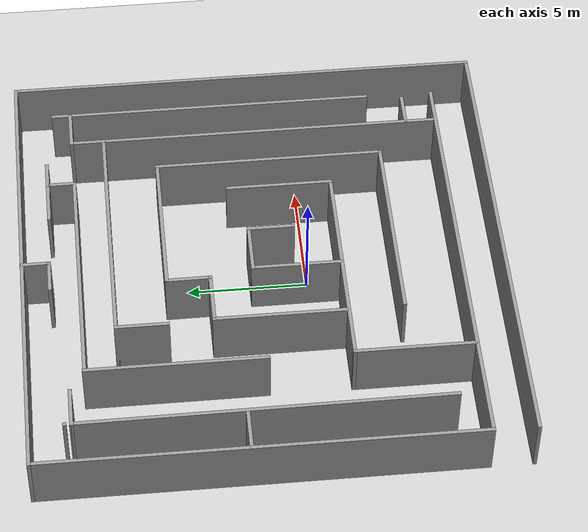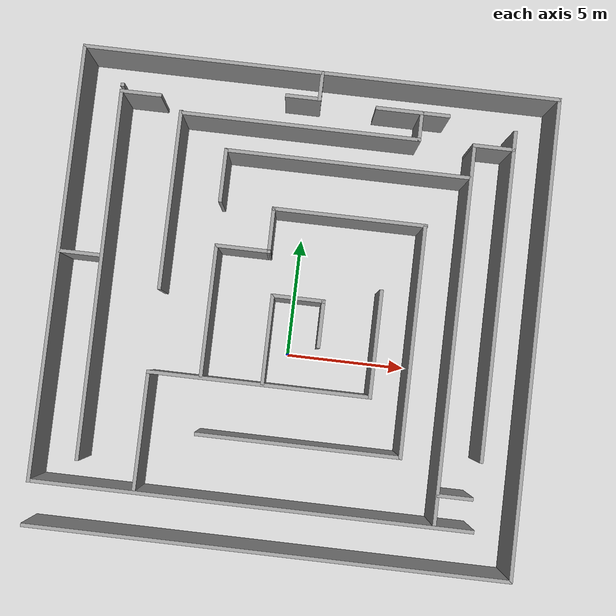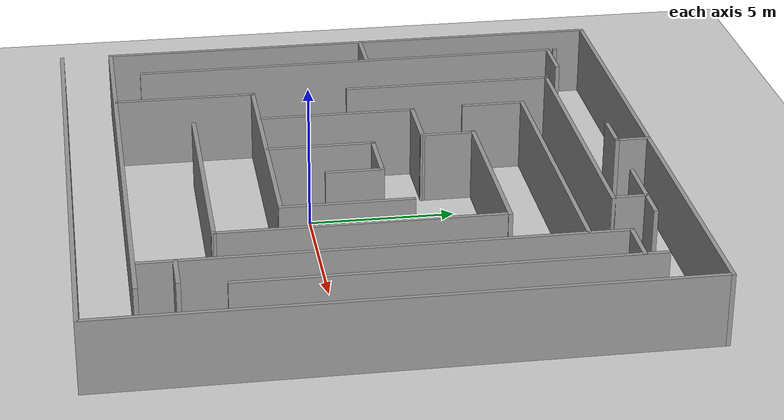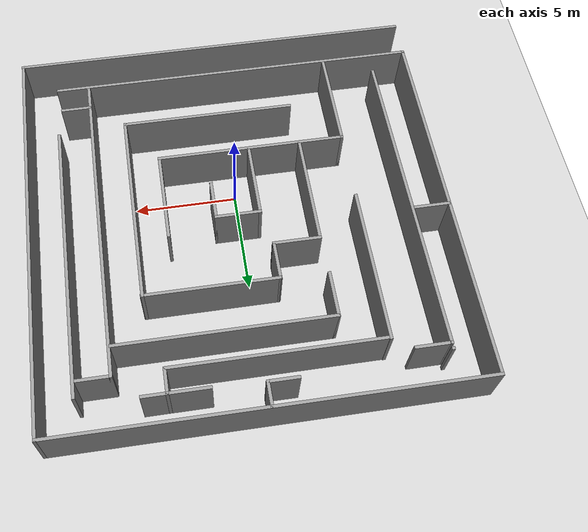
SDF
<sdf version="1.7">
 <world name="default">
  <light name="sun" type="directional">
   <pose>0 0 10 0 -0 0</pose>
   <diffuse>0.8 0.8 0.8 1</diffuse>
   <specular>0.2 0.2 0.2 1</specular>
   <attenuation>
    <range>1000</range>
    <constant>0.9</constant>
    <linear>0.01</linear>
    <quadratic>0.001</quadratic>
   </attenuation>
   <direction>-0.5 0.1 -0.9</direction>
   <spot><inner_angle>0</inner_angle><outer_angle>0</outer_angle><falloff>0</falloff></spot>
  </light>
  <model name="ground_plane">
   <static>1</static>
   <link name="link">
    <collision name="collision">
     <geometry><plane><normal>0 0 1</normal><size>100 100</size></plane></geometry>
     <surface><friction><ode><mu>100</mu><mu2>50</mu2></ode></friction></surface>
    </collision>
    <visual name="visual">
     <cast_shadows>0</cast_shadows>
     <geometry><plane><normal>0 0 1</normal><size>100 100</size></plane></geometry>
     <material>
      <script><uri>file://media/materials/scripts/gazebo.material</uri><name>Gazebo/Grey</name></script>
     </material>
    </visual>
   </link>
  </model>
  <gravity>0 0 -9.8</gravity>
  <magnetic_field>6e-06 2.3e-05 -4.2e-05</magnetic_field>
  <atmosphere type="adiabatic"/>
  <physics type="ode">
   <max_step_size>0.001</max_step_size>
   <real_time_factor>1</real_time_factor>
   <real_time_update_rate>1000</real_time_update_rate>
  </physics>
  <scene><ambient>0.4 0.4 0.4 1</ambient><background>0.7 0.7 0.7 1</background><shadows>1</shadows></scene>
  <audio><device>default</device></audio>
  <spherical_coordinates>
   <surface_model>EARTH_WGS84</surface_model>
   <latitude_deg>0</latitude_deg>
   <longitude_deg>0</longitude_deg>
   <elevation>0</elevation>
   <heading_deg>0</heading_deg>
  </spherical_coordinates>
  <model name="migong">
   <pose>5.37842 1.84682 0 0 -0 0</pose>
   <link name="Wall_10">
    <collision name="Wall_10_Collision">
     <geometry><box><size>9.25 0.15 2.5</size></box></geometry>
     <pose>0 0 1.25 0 -0 0</pose>
    </collision>
    <visual name="Wall_10_Visual">
     <pose>0 0 1.25 0 -0 0</pose>
     <geometry><box><size>9.25 0.15 2.5</size></box></geometry>
     <material>
      <script><uri>file://media/materials/scripts/gazebo.material</uri><name>Gazebo/Grey</name></script>
      <ambient>1 1 1 1</ambient>
     </material>
     <meta><layer>0</layer></meta>
    </visual>
    <pose>-6.40122 -3.20135 0 0 -0 0</pose>
   </link>
   <link name="Wall_11">
    <collision name="Wall_11_Collision">
     <geometry><box><size>4.5 0.15 2.5</size></box></geometry>
     <pose>0 0 1.25 0 -0 0</pose>
    </collision>
    <visual name="Wall_11_Visual">
     <pose>0 0 1.25 0 -0 0</pose>
     <geometry><box><size>4.5 0.15 2.5</size></box></geometry>
     <material>
      <script><uri>file://media/materials/scripts/gazebo.material</uri><name>Gazebo/Grey</name></script>
      <ambient>1 1 1 1</ambient>
     </material>
     <meta><layer>0</layer></meta>
    </visual>
    <pose>-1.85121 -1.02635 0 0 -0 1.5708</pose>
   </link>
   <link name="Wall_15">
    <collision name="Wall_15_Collision">
     <geometry><box><size>3.75 0.15 2.5</size></box></geometry>
     <pose>0 0 1.25 0 -0 0</pose>
    </collision>
    <visual name="Wall_15_Visual">
     <pose>0 0 1.25 0 -0 0</pose>
     <geometry><box><size>3.75 0.15 2.5</size></box></geometry>
     <material>
      <script><uri>file://media/materials/scripts/gazebo.material</uri><name>Gazebo/Grey</name></script>
      <ambient>1 1 1 1</ambient>
     </material>
     <meta><layer>0</layer></meta>
    </visual>
    <pose>-6.27244 -1.32632 0 0 -0 1.5708</pose>
   </link>
   <link name="Wall_16">
    <collision name="Wall_16_Collision">
     <geometry><box><size>2.25 0.15 2.5</size></box></geometry>
     <pose>0 0 1.25 0 -0 0</pose>
    </collision>
    <visual name="Wall_16_Visual">
     <pose>0 0 1.25 0 -0 0</pose>
     <geometry><box><size>2.25 0.15 2.5</size></box></geometry>
     <material>
      <script><uri>file://media/materials/scripts/gazebo.material</uri><name>Gazebo/Grey</name></script>
      <ambient>1 1 1 1</ambient>
     </material>
     <meta><layer>0</layer></meta>
    </visual>
    <pose>-5.22244 0.473679 0 0 -0 0</pose>
   </link>
   <link name="Wall_17">
    <collision name="Wall_17_Collision">
     <geometry><box><size>2 0.15 2.5</size></box></geometry>
     <pose>0 0 1.25 0 -0 0</pose>
    </collision>
    <visual name="Wall_17_Visual">
     <pose>0 0 1.25 0 -0 0</pose>
     <geometry><box><size>2 0.15 2.5</size></box></geometry>
     <material>
      <script><uri>file://media/materials/scripts/gazebo.material</uri><name>Gazebo/Grey</name></script>
      <ambient>1 1 1 1</ambient>
     </material>
     <meta><layer>0</layer></meta>
    </visual>
    <pose>-4.17244 -0.451321 0 0 -0 -1.5708</pose>
   </link>
   <link name="Wall_19">
    <collision name="Wall_19_Collision">
     <geometry><box><size>5.5 0.15 2.5</size></box></geometry>
     <pose>0 0 1.25 0 -0 0</pose>
    </collision>
    <visual name="Wall_19_Visual">
     <pose>0 0 1.25 0 -0 0</pose>
     <geometry><box><size>5.5 0.15 2.5</size></box></geometry>
     <material>
      <script><uri>file://media/materials/scripts/gazebo.material</uri><name>Gazebo/Grey</name></script>
      <ambient>1 1 1 1</ambient>
     </material>
     <meta><layer>0</layer></meta>
    </visual>
    <pose>-8.80531 -0.416142 0 0 -0 1.5708</pose>
   </link>
   <link name="Wall_20">
    <collision name="Wall_20_Collision">
     <geometry><box><size>2.32036 0.15 2.5</size></box></geometry>
     <pose>0 0 1.25 0 -0 0</pose>
    </collision>
    <visual name="Wall_20_Visual">
     <pose>0 0 1.25 0 -0 0</pose>
     <geometry><box><size>2.32036 0.15 2.5</size></box></geometry>
     <material>
      <script><uri>file://media/materials/scripts/gazebo.material</uri><name>Gazebo/Grey</name></script>
      <ambient>1 1 1 1</ambient>
     </material>
     <meta><layer>0</layer></meta>
    </visual>
    <pose>-7.72013 2.25886 0 0 -0 0</pose>
   </link>
   <link name="Wall_22">
    <collision name="Wall_22_Collision">
     <geometry><box><size>6.42964 0.15 2.5</size></box></geometry>
     <pose>0 0 1.25 0 -0 0</pose>
    </collision>
    <visual name="Wall_22_Visual">
     <pose>0 0 1.25 0 -0 0</pose>
     <geometry><box><size>6.42964 0.15 2.5</size></box></geometry>
     <material>
      <script><uri>file://media/materials/scripts/gazebo.material</uri><name>Gazebo/Grey</name></script>
      <ambient>1 1 1 1</ambient>
     </material>
     <meta><layer>0</layer></meta>
    </visual>
    <pose>-3.47711 4.046 0 0 -0 0</pose>
   </link>
   <link name="Wall_23">
    <collision name="Wall_23_Collision">
     <geometry><box><size>9.68772 0.15 2.5</size></box></geometry>
     <pose>0 0 1.25 0 -0 0</pose>
    </collision>
    <visual name="Wall_23_Visual">
     <pose>0 0 1.25 0 -0 0</pose>
     <geometry><box><size>9.68772 0.15 2.5</size></box></geometry>
     <material>
      <script><uri>file://media/materials/scripts/gazebo.material</uri><name>Gazebo/Grey</name></script>
      <ambient>1 1 1 1</ambient>
     </material>
     <meta><layer>0</layer></meta>
    </visual>
    <pose>-0.3596 -0.722572 0 0 -0 -1.5699</pose>
   </link>
   <link name="Wall_24">
    <collision name="Wall_24_Collision">
     <geometry><box><size>8.5 0.15 2.5</size></box></geometry>
     <pose>0 0 1.25 0 -0 0</pose>
    </collision>
    <visual name="Wall_24_Visual">
     <pose>0 0 1.25 0 -0 0</pose>
     <geometry><box><size>8.5 0.15 2.5</size></box></geometry>
     <material>
      <script><uri>file://media/materials/scripts/gazebo.material</uri><name>Gazebo/Grey</name></script>
      <ambient>1 1 1 1</ambient>
     </material>
     <meta><layer>0</layer></meta>
    </visual>
    <pose>-4.53031 -5.49114 0 0 -0 3.14159</pose>
   </link>
   <link name="Wall_26">
    <collision name="Wall_26_Collision">
     <geometry><box><size>1.93723 0.15 2.5</size></box></geometry>
     <pose>0 0 1.25 0 -0 0</pose>
    </collision>
    <visual name="Wall_26_Visual">
     <pose>0 0 1.25 0 -0 0</pose>
     <geometry><box><size>1.93723 0.15 2.5</size></box></geometry>
     <material>
      <script><uri>file://media/materials/scripts/gazebo.material</uri><name>Gazebo/Grey</name></script>
      <ambient>1 1 1 1</ambient>
     </material>
     <meta><layer>0</layer></meta>
    </visual>
    <pose>-6.63924 3.15243 0 0 -0 -1.566</pose>
   </link>
   <link name="Wall_28">
    <collision name="Wall_28_Collision">
     <geometry><box><size>2.25 0.15 2.5</size></box></geometry>
     <pose>0 0 1.25 0 -0 0</pose>
    </collision>
    <visual name="Wall_28_Visual">
     <pose>0 0 1.25 0 -0 0</pose>
     <geometry><box><size>2.25 0.15 2.5</size></box></geometry>
     <material>
      <script><uri>file://media/materials/scripts/gazebo.material</uri><name>Gazebo/Grey</name></script>
      <ambient>1 1 1 1</ambient>
     </material>
     <meta><layer>0</layer></meta>
    </visual>
    <pose>-8.88086 5.19627 0 0 -0 1.5708</pose>
   </link>
   <link name="Wall_29">
    <collision name="Wall_29_Collision">
     <geometry><box><size>10.25 0.15 2.5</size></box></geometry>
     <pose>0 0 1.25 0 -0 0</pose>
    </collision>
    <visual name="Wall_29_Visual">
     <pose>0 0 1.25 0 -0 0</pose>
     <geometry><box><size>10.25 0.15 2.5</size></box></geometry>
     <material>
      <script><uri>file://media/materials/scripts/gazebo.material</uri><name>Gazebo/Grey</name></script>
      <ambient>1 1 1 1</ambient>
     </material>
     <meta><layer>0</layer></meta>
    </visual>
    <pose>-3.83086 6.24627 0 0 -0 0</pose>
   </link>
   <link name="Wall_3">
    <collision name="Wall_3_Collision">
     <geometry><box><size>20 0.15 2.5</size></box></geometry>
     <pose>0 0 1.25 0 -0 0</pose>
    </collision>
    <visual name="Wall_3_Visual">
     <pose>0 0 1.25 0 -0 0</pose>
     <geometry><box><size>20 0.15 2.5</size></box></geometry>
     <material>
      <script><uri>file://media/materials/scripts/gazebo.material</uri><name>Gazebo/Grey</name></script>
      <ambient>1 1 1 1</ambient>
     </material>
     <meta><layer>0</layer></meta>
    </visual>
    <pose>-5.31802 -9.925 0 0 -0 0</pose>
   </link>
   <link name="Wall_33">
    <collision name="Wall_33_Collision">
     <geometry><box><size>15.75 0.15 2.5</size></box></geometry>
     <pose>0 0 1.25 0 -0 0</pose>
    </collision>
    <visual name="Wall_33_Visual">
     <pose>0 0 1.25 0 -0 0</pose>
     <geometry><box><size>15.75 0.15 2.5</size></box></geometry>
     <material>
      <script><uri>file://media/materials/scripts/gazebo.material</uri><name>Gazebo/Grey</name></script>
      <ambient>1 1 1 1</ambient>
     </material>
     <meta><layer>0</layer></meta>
    </visual>
    <pose>1.30586 -0.180871 0 0 -0 -1.5708</pose>
   </link>
   <link name="Wall_35">
    <collision name="Wall_35_Collision">
     <geometry><box><size>1.75 0.15 2.5</size></box></geometry>
     <pose>0 0 1.25 0 -0 0</pose>
    </collision>
    <visual name="Wall_35_Visual">
     <pose>0 0 1.25 0 -0 0</pose>
     <geometry><box><size>1.75 0.15 2.5</size></box></geometry>
     <material>
      <script><uri>file://media/materials/scripts/gazebo.material</uri><name>Gazebo/Grey</name></script>
      <ambient>1 1 1 1</ambient>
     </material>
     <meta><layer>0</layer></meta>
    </visual>
    <pose>2.10586 7.61913 0 0 -0 0</pose>
   </link>
   <link name="Wall_37">
    <collision name="Wall_37_Collision">
     <geometry><box><size>13.75 0.15 2.5</size></box></geometry>
     <pose>0 0 1.25 0 -0 0</pose>
    </collision>
    <visual name="Wall_37_Visual">
     <pose>0 0 1.25 0 -0 0</pose>
     <geometry><box><size>13.75 0.15 2.5</size></box></geometry>
     <material>
      <script><uri>file://media/materials/scripts/gazebo.material</uri><name>Gazebo/Grey</name></script>
      <ambient>1 1 1 1</ambient>
     </material>
     <meta><layer>0</layer></meta>
    </visual>
    <pose>2.93592 1.54019 0 0 -0 -1.5708</pose>
   </link>
   <link name="Wall_39">
    <collision name="Wall_39_Collision">
     <geometry><box><size>1.5 0.15 2.5</size></box></geometry>
     <pose>0 0 1.25 0 -0 0</pose>
    </collision>
    <visual name="Wall_39_Visual">
     <pose>0 0 1.25 0 -0 0</pose>
     <geometry><box><size>1.5 0.15 2.5</size></box></geometry>
     <material>
      <script><uri>file://media/materials/scripts/gazebo.material</uri><name>Gazebo/Grey</name></script>
      <ambient>1 1 1 1</ambient>
     </material>
     <meta><layer>0</layer></meta>
    </visual>
    <pose>2.01145 -6.81946 0 0 -0 0</pose>
   </link>
   <link name="Wall_4">
    <collision name="Wall_4_Collision">
     <geometry><box><size>20 0.15 2.5</size></box></geometry>
     <pose>0 0 1.25 0 -0 0</pose>
    </collision>
    <visual name="Wall_4_Visual">
     <pose>0 0 1.25 0 -0 0</pose>
     <geometry><box><size>20 0.15 2.5</size></box></geometry>
     <material>
      <script><uri>file://media/materials/scripts/gazebo.material</uri><name>Gazebo/Grey</name></script>
      <ambient>1 1 1 1</ambient>
     </material>
     <meta><layer>0</layer></meta>
    </visual>
    <pose>4.60698 0 0 0 -0 1.5708</pose>
   </link>
   <link name="Wall_41">
    <collision name="Wall_41_Collision">
     <geometry><box><size>1.75 0.15 2.5</size></box></geometry>
     <pose>0 0 1.25 0 -0 0</pose>
    </collision>
    <visual name="Wall_41_Visual">
     <pose>0 0 1.25 0 -0 0</pose>
     <geometry><box><size>1.75 0.15 2.5</size></box></geometry>
     <material>
      <script><uri>file://media/materials/scripts/gazebo.material</uri><name>Gazebo/Grey</name></script>
      <ambient>1 1 1 1</ambient>
     </material>
     <meta><layer>0</layer></meta>
    </visual>
    <pose>-14.3922 1.31233 0 0 -0 0</pose>
   </link>
   <link name="Wall_43">
    <collision name="Wall_43_Collision">
     <geometry><box><size>15.4047 0.15 2.5</size></box></geometry>
     <pose>0 0 1.25 0 -0 0</pose>
    </collision>
    <visual name="Wall_43_Visual">
     <pose>0 0 1.25 0 -0 0</pose>
     <geometry><box><size>15.4047 0.15 2.5</size></box></geometry>
     <material>
      <script><uri>file://media/materials/scripts/gazebo.material</uri><name>Gazebo/Grey</name></script>
      <ambient>1 1 1 1</ambient>
     </material>
     <meta><layer>0</layer></meta>
    </visual>
    <pose>-13.4425 0.589208 0 0 -0 -1.56461</pose>
   </link>
   <link name="Wall_48">
    <collision name="Wall_48_Collision">
     <geometry><box><size>10 0.15 2.5</size></box></geometry>
     <pose>0 0 1.25 0 -0 0</pose>
    </collision>
    <visual name="Wall_48_Visual">
     <pose>0 0 1.25 0 -0 0</pose>
     <geometry><box><size>10 0.15 2.5</size></box></geometry>
     <material>
      <script><uri>file://media/materials/scripts/gazebo.material</uri><name>Gazebo/Grey</name></script>
      <ambient>1 1 1 1</ambient>
     </material>
     <meta><layer>0</layer></meta>
    </visual>
    <pose>-5.92552 7.59276 0 0 -0 0</pose>
   </link>
   <link name="Wall_49">
    <collision name="Wall_49_Collision">
     <geometry><box><size>1.25 0.15 2.5</size></box></geometry>
     <pose>0 0 1.25 0 -0 0</pose>
    </collision>
    <visual name="Wall_49_Visual">
     <pose>0 0 1.25 0 -0 0</pose>
     <geometry><box><size>1.25 0.15 2.5</size></box></geometry>
     <material>
      <script><uri>file://media/materials/scripts/gazebo.material</uri><name>Gazebo/Grey</name></script>
      <ambient>1 1 1 1</ambient>
     </material>
     <meta><layer>0</layer></meta>
    </visual>
    <pose>-1.00052 8.16937 0 0 -0 1.5708</pose>
   </link>
   <link name="Wall_5">
    <collision name="Wall_5_Collision">
     <geometry><box><size>20 0.15 2.5</size></box></geometry>
     <pose>0 0 1.25 0 -0 0</pose>
    </collision>
    <visual name="Wall_5_Visual">
     <pose>0 0 1.25 0 -0 0</pose>
     <geometry><box><size>20 0.15 2.5</size></box></geometry>
     <material>
      <script><uri>file://media/materials/scripts/gazebo.material</uri><name>Gazebo/Grey</name></script>
      <ambient>1 1 1 1</ambient>
     </material>
     <meta><layer>0</layer></meta>
    </visual>
    <pose>-5.31802 9.925 0 0 -0 3.14159</pose>
   </link>
   <link name="Wall_50">
    <collision name="Wall_50_Collision">
     <geometry><box><size>2 0.15 2.5</size></box></geometry>
     <pose>0 0 1.25 0 -0 0</pose>
    </collision>
    <visual name="Wall_50_Visual">
     <pose>0 0 1.25 0 -0 0</pose>
     <geometry><box><size>2 0.15 2.5</size></box></geometry>
     <material>
      <script><uri>file://media/materials/scripts/gazebo.material</uri><name>Gazebo/Grey</name></script>
      <ambient>1 1 1 1</ambient>
     </material>
     <meta><layer>0</layer></meta>
    </visual>
    <pose>-1.92552 8.71936 0 0 -0 3.14159</pose>
   </link>
   <link name="Wall_52">
    <collision name="Wall_52_Collision">
     <geometry><box><size>1.25 0.15 2.5</size></box></geometry>
     <pose>0 0 1.25 0 -0 0</pose>
    </collision>
    <visual name="Wall_52_Visual">
     <pose>0 0 1.25 0 -0 0</pose>
     <geometry><box><size>1.25 0.15 2.5</size></box></geometry>
     <material>
      <script><uri>file://media/materials/scripts/gazebo.material</uri><name>Gazebo/Grey</name></script>
      <ambient>1 1 1 1</ambient>
     </material>
     <meta><layer>0</layer></meta>
    </visual>
    <pose>-5.28925 9.36287 0 0 -0 -1.5708</pose>
   </link>
   <link name="Wall_53">
    <collision name="Wall_53_Collision">
     <geometry><box><size>1.5 0.15 2.5</size></box></geometry>
     <pose>0 0 1.25 0 -0 0</pose>
    </collision>
    <visual name="Wall_53_Visual">
     <pose>0 0 1.25 0 -0 0</pose>
     <geometry><box><size>1.5 0.15 2.5</size></box></geometry>
     <material>
      <script><uri>file://media/materials/scripts/gazebo.material</uri><name>Gazebo/Grey</name></script>
      <ambient>1 1 1 1</ambient>
     </material>
     <meta><layer>0</layer></meta>
    </visual>
    <pose>-5.96425 8.81287 0 0 -0 3.14159</pose>
   </link>
   <link name="Wall_57">
    <collision name="Wall_57_Collision">
     <geometry><box><size>7.5 0.15 2.5</size></box></geometry>
     <pose>0 0 1.25 0 -0 0</pose>
    </collision>
    <visual name="Wall_57_Visual">
     <pose>0 0 1.25 0 -0 0</pose>
     <geometry><box><size>7.5 0.15 2.5</size></box></geometry>
     <material>
      <script><uri>file://media/materials/scripts/gazebo.material</uri><name>Gazebo/Grey</name></script>
      <ambient>1 1 1 1</ambient>
     </material>
     <meta><layer>0</layer></meta>
    </visual>
    <pose>-10.932 3.94158 0 0 -0 -1.5708</pose>
   </link>
   <link name="Wall_60">
    <collision name="Wall_60_Collision">
     <geometry><box><size>0.15 0.15 2.5</size></box></geometry>
     <pose>0 0 1.25 0 -0 0</pose>
    </collision>
    <visual name="Wall_60_Visual">
     <pose>0 0 1.25 0 -0 0</pose>
     <geometry><box><size>0.15 0.15 2.5</size></box></geometry>
     <material>
      <script><uri>file://media/materials/scripts/gazebo.material</uri><name>Gazebo/Grey</name></script>
      <ambient>1 1 1 1</ambient>
     </material>
     <meta><layer>0</layer></meta>
    </visual>
    <pose>-13.4856 8.48031 0 0 -0 0</pose>
   </link>
   <link name="Wall_62">
    <collision name="Wall_62_Collision">
     <geometry><box><size>1.75 0.15 2.5</size></box></geometry>
     <pose>0 0 1.25 0 -0 0</pose>
    </collision>
    <visual name="Wall_62_Visual">
     <pose>0 0 1.25 0 -0 0</pose>
     <geometry><box><size>1.75 0.15 2.5</size></box></geometry>
     <material>
      <script><uri>file://media/materials/scripts/gazebo.material</uri><name>Gazebo/Grey</name></script>
      <ambient>1 1 1 1</ambient>
     </material>
     <meta><layer>0</layer></meta>
    </visual>
    <pose>-12.6898 8.21641 0 0 -0 0</pose>
   </link>
   <link name="Wall_66">
    <collision name="Wall_66_Collision">
     <geometry><box><size>1.25 0.15 2.5</size></box></geometry>
     <pose>0 0 1.25 0 -0 0</pose>
    </collision>
    <visual name="Wall_66_Visual">
     <pose>0 0 1.25 0 -0 0</pose>
     <geometry><box><size>1.25 0.15 2.5</size></box></geometry>
     <material>
      <script><uri>file://media/materials/scripts/gazebo.material</uri><name>Gazebo/Grey</name></script>
      <ambient>1 1 1 1</ambient>
     </material>
     <meta><layer>0</layer></meta>
    </visual>
    <pose>-0.450519 8.71936 0 0 -0 0</pose>
   </link>
   <link name="Wall_68">
    <collision name="Wall_68_Collision">
     <geometry><box><size>18.1967 0.15 2.5</size></box></geometry>
     <pose>0 0 1.25 0 -0 0</pose>
    </collision>
    <visual name="Wall_68_Visual">
     <pose>0 0 1.25 0 -0 0</pose>
     <geometry><box><size>18.1967 0.15 2.5</size></box></geometry>
     <material>
      <script><uri>file://media/materials/scripts/gazebo.material</uri><name>Gazebo/Grey</name></script>
      <ambient>1 1 1 1</ambient>
     </material>
     <meta><layer>0</layer></meta>
    </visual>
    <pose>-15.243 0.901648 0 0 -0 -1.5708</pose>
   </link>
   <link name="Wall_7">
    <collision name="Wall_7_Collision">
     <geometry><box><size>18.25 0.15 2.5</size></box></geometry>
     <pose>0 0 1.25 0 -0 0</pose>
    </collision>
    <visual name="Wall_7_Visual">
     <pose>0 0 1.25 0 -0 0</pose>
     <geometry><box><size>18.25 0.15 2.5</size></box></geometry>
     <material>
      <script><uri>file://media/materials/scripts/gazebo.material</uri><name>Gazebo/Grey</name></script>
      <ambient>1 1 1 1</ambient>
     </material>
     <meta><layer>0</layer></meta>
    </visual>
    <pose>-6.19302 -8.12171 0 0 -0 0</pose>
   </link>
   <link name="Wall_9">
    <collision name="Wall_9_Collision">
     <geometry><box><size>5 0.15 2.5</size></box></geometry>
     <pose>0 0 1.25 0 -0 0</pose>
    </collision>
    <visual name="Wall_9_Visual">
     <pose>0 0 1.25 0 -0 0</pose>
     <geometry><box><size>5 0.15 2.5</size></box></geometry>
     <material>
      <script><uri>file://media/materials/scripts/gazebo.material</uri><name>Gazebo/Grey</name></script>
      <ambient>1 1 1 1</ambient>
     </material>
     <meta><layer>0</layer></meta>
    </visual>
    <pose>-10.9512 -5.62635 0 0 -0 1.5708</pose>
   </link>
   <static>1</static>
  </model>
 </world>
</sdf>
